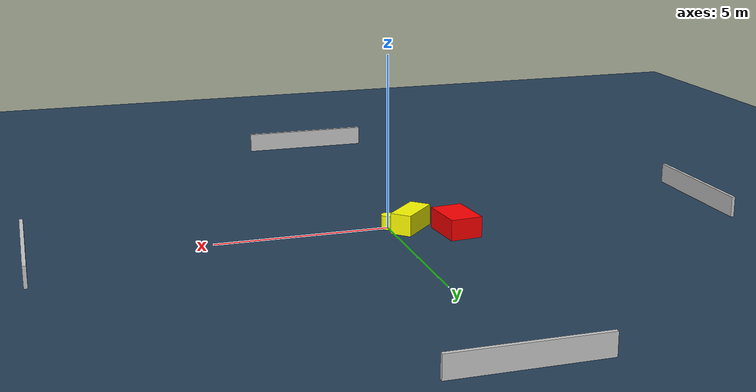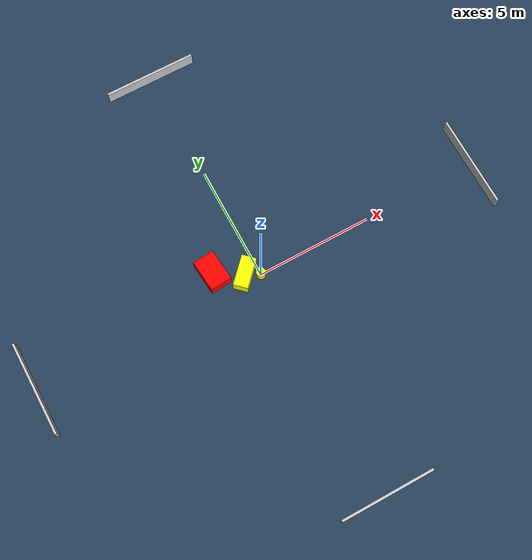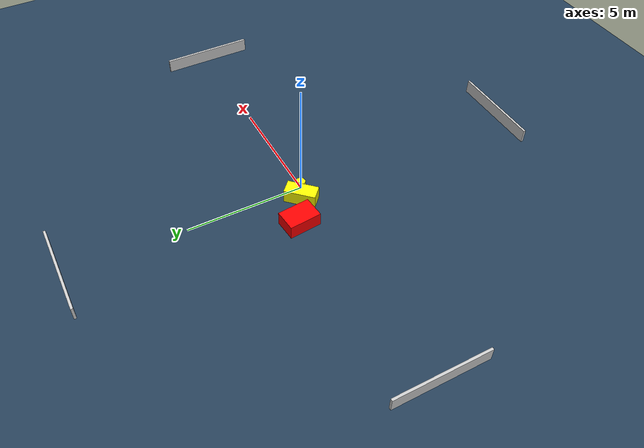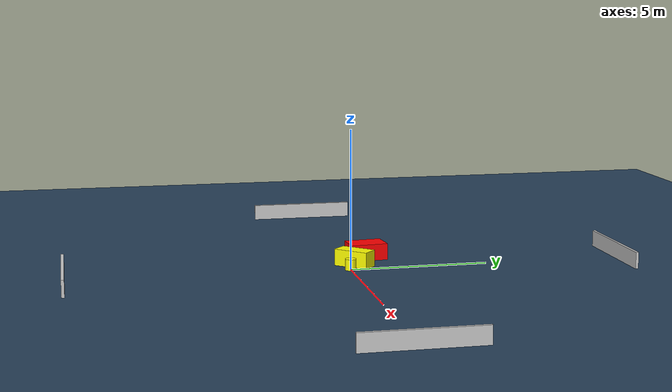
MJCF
<?xml version="1.0" ?>
<mujoco model="generated_environment">
  <option timestep="0.01" integrator="RK4" cone="elliptic"/>
  <default>
    <geom density="1"/>
  </default>
  <asset>
    <texture builtin="gradient" height="3072" name="skybox" rgb1="0.3 0.5 0.7" rgb2="0 0 0" type="skybox" width="512"/>
    <texture builtin="checker" height="300" name="groundplane" rgb1="0.2 0.3 0.4" rgb2="0.1 0.2 0.3" type="2d" width="300"/>
    <material name="groundplane" reflectance="0.2" texrepeat="5 5" texture="groundplane"/>
  </asset>
  <worldbody>
    <light dir="0 0 -1" directional="true" pos="0 0 1.5"/>
    <geom condim="3" friction="0.5 0.005 0.001" material="groundplane" name="floor" pos="0 0 0" size="0 0 0.05" type="plane"/>
    <body name="walls">
      <geom name="wall_1" condim="4" pos="-10.0 0.0 0.3" rgba="0.800000011920929 0.800000011920929 0.800000011920929 1.0" size="0.05 2.0 0.3" type="box"/>
      <geom name="wall_2" condim="4" pos="10.0 0.0 0.3" rgba="0.800000011920929 0.800000011920929 0.800000011920929 1.0" size="0.05 2.0 0.3" type="box"/>
      <geom name="wall_3" condim="4" pos="0.0 -10.0 0.3" rgba="0.800000011920929 0.800000011920929 0.800000011920929 1.0" size="2.0 0.05 0.3" type="box"/>
      <geom name="wall_4" condim="4" pos="0.0 10.0 0.3" rgba="0.800000011920929 0.800000011920929 0.800000011920929 1.0" size="2.0 0.05 0.3" type="box"/>
    </body>
    <body name="robot">
      <joint name="joint_x" type="slide" pos="0 0 0" axis="1 0 0"/>
      <joint name="joint_y" type="slide" pos="0 0 0" axis="0 1 0"/>
      <geom name="robot" type="cylinder" pos="0.0 0.0 0.2" size="0.2 0.2 0.0" mass="5.0" friction="1.0 0.005 0.0001" condim="4" rgba="1.0 1.0 0.0 1.0"/>
    </body>
    <body name="obstacle_1_movable">
      <geom name="obstacle_1_movable" condim="4" pos="-0.5877818132155442 0.2740294428986329 0.3" euler="0 0 226.27606662279524" friction="0.0 0.005 0.001" rgba="1.0 1.0 0.0 1.0" size="0.6573786471316063 0.31107397668278713 0.3" type="box" mass="0.1"/>
      <joint type="free"/>
    </body>
    <body name="obstacle_2_static">
      <geom name="obstacle_2_static" condim="4" pos="-1.7190740688428254 0.9462786414225018 0.3" euler="0 0 95.3171935338349" friction="0.0 0.005 0.001" rgba="1.0 0.0 0.0 1.0" size="0.6831186874781277 0.46625122192465196 0.3" type="box"/>
    </body>
  </worldbody>
  <actuator>
    <motor name="actuator_x" joint="joint_x" gear="1" ctrlrange="-1 1"/>
    <motor name="actuator_y" joint="joint_y" gear="1" ctrlrange="-1 1"/>
  </actuator>
</mujoco>
